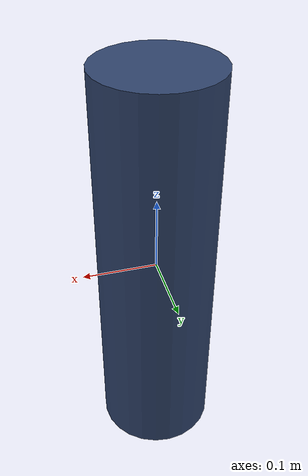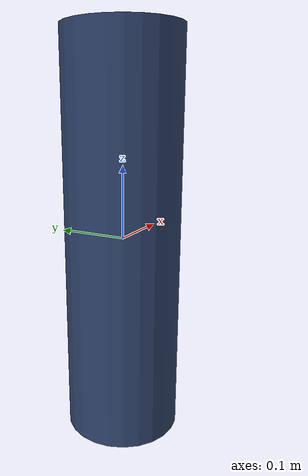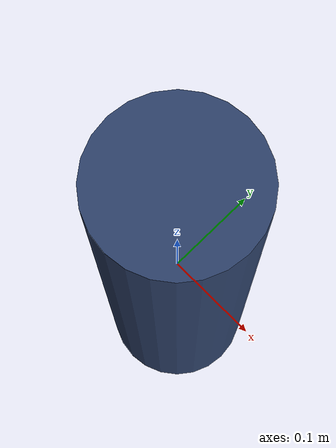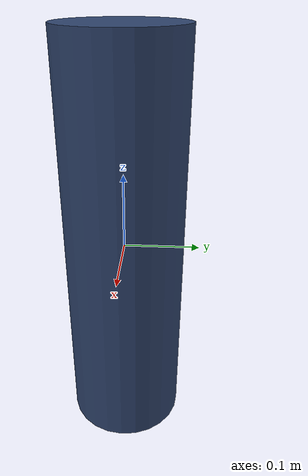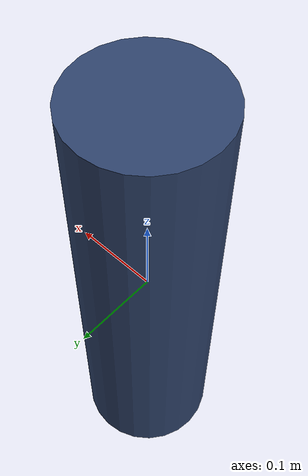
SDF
<?xml version="1.0"?>
<sdf version="1.7">
  <model name="planning_column">
    <static>true</static>
    <link name="link">
      <collision name="collision">
        <geometry>
          <cylinder>
            <radius>0.08</radius>
            <length>0.55</length>
          </cylinder>
        </geometry>
      </collision>
      <visual name="visual">
        <geometry>
          <cylinder>
            <radius>0.08</radius>
            <length>0.55</length>
          </cylinder>
        </geometry>
        <material>
          <ambient>0.12 0.18 0.28 1</ambient>
          <diffuse>0.18 0.26 0.42 1</diffuse>
        </material>
      </visual>
    </link>
  </model>
</sdf>
